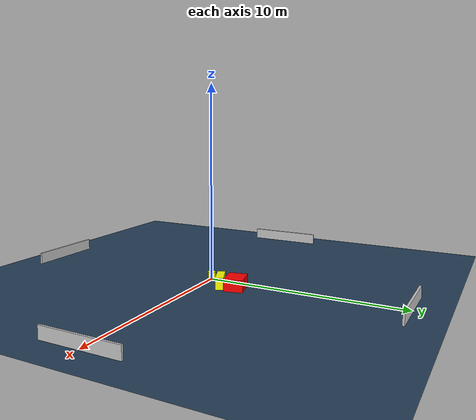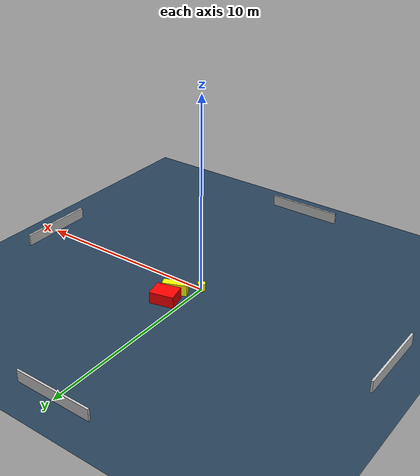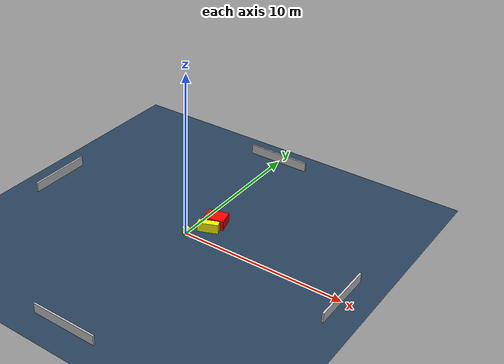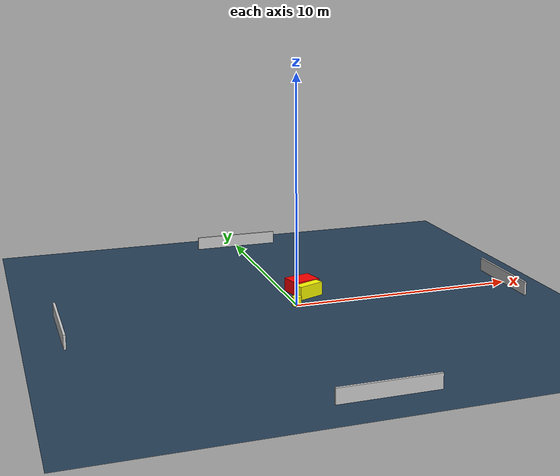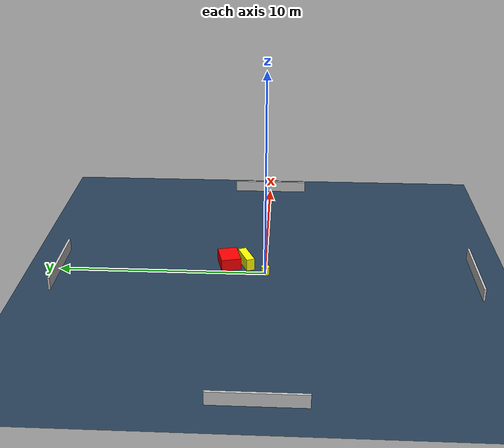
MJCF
<?xml version="1.0" ?>
<mujoco model="generated_environment">
  <option timestep="0.01" integrator="RK4" cone="elliptic"/>
  <default>
    <geom density="1"/>
  </default>
  <asset>
    <texture builtin="gradient" height="3072" name="skybox" rgb1="0.3 0.5 0.7" rgb2="0 0 0" type="skybox" width="512"/>
    <texture builtin="checker" height="300" name="groundplane" rgb1="0.2 0.3 0.4" rgb2="0.1 0.2 0.3" type="2d" width="300"/>
    <material name="groundplane" reflectance="0.2" texrepeat="5 5" texture="groundplane"/>
  </asset>
  <worldbody>
    <light dir="0 0 -1" directional="true" pos="0 0 1.5"/>
    <geom condim="3" friction="0.5 0.005 0.001" material="groundplane" name="floor" pos="0 0 0" size="0 0 0.05" type="plane"/>
    <body name="walls">
      <geom name="wall_1" condim="4" pos="-10.0 0.0 0.3" rgba="0.800000011920929 0.800000011920929 0.800000011920929 1.0" size="0.05 2.0 0.3" type="box"/>
      <geom name="wall_2" condim="4" pos="10.0 0.0 0.3" rgba="0.800000011920929 0.800000011920929 0.800000011920929 1.0" size="0.05 2.0 0.3" type="box"/>
      <geom name="wall_3" condim="4" pos="0.0 -10.0 0.3" rgba="0.800000011920929 0.800000011920929 0.800000011920929 1.0" size="2.0 0.05 0.3" type="box"/>
      <geom name="wall_4" condim="4" pos="0.0 10.0 0.3" rgba="0.800000011920929 0.800000011920929 0.800000011920929 1.0" size="2.0 0.05 0.3" type="box"/>
    </body>
    <body name="robot">
      <joint name="joint_x" type="slide" pos="0 0 0" axis="1 0 0"/>
      <joint name="joint_y" type="slide" pos="0 0 0" axis="0 1 0"/>
      <geom name="robot" type="cylinder" pos="0.0 0.0 0.2" size="0.2 0.2 0.0" mass="5.0" friction="1.0 0.005 0.0001" condim="4" rgba="1.0 1.0 0.0 1.0"/>
    </body>
    <body name="obstacle_1_movable">
      <geom name="obstacle_1_movable" condim="4" pos="0.8684977050670608 0.9668489743789319 0.3" euler="0 0 292.80675622096544" friction="0.0 0.005 0.001" rgba="1.0 1.0 0.0 1.0" size="0.20194509578889244 0.6183866520954319 0.3" type="box" mass="0.1"/>
      <joint type="free"/>
    </body>
    <body name="obstacle_2_static">
      <geom name="obstacle_2_static" condim="4" pos="0.8282921607964512 1.7967485902724958 0.3" euler="0 0 13.822314497472487" friction="0.0 0.005 0.001" rgba="1.0 0.0 0.0 1.0" size="0.619788341673293 0.4739889103292305 0.3" type="box"/>
    </body>
  </worldbody>
  <actuator>
    <motor name="actuator_x" joint="joint_x" gear="1" ctrlrange="-1 1"/>
    <motor name="actuator_y" joint="joint_y" gear="1" ctrlrange="-1 1"/>
  </actuator>
</mujoco>
